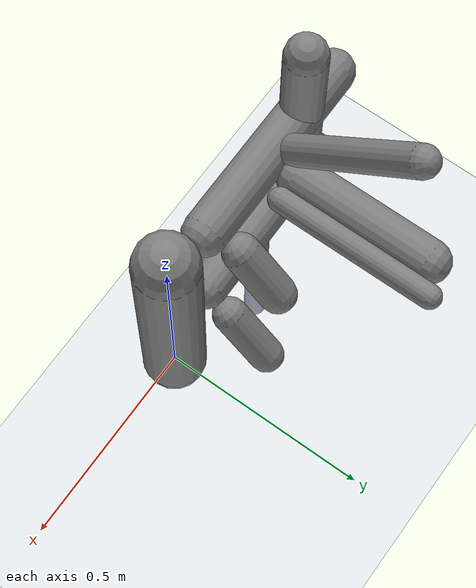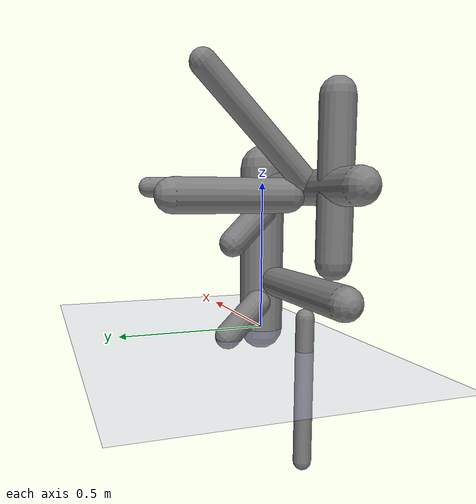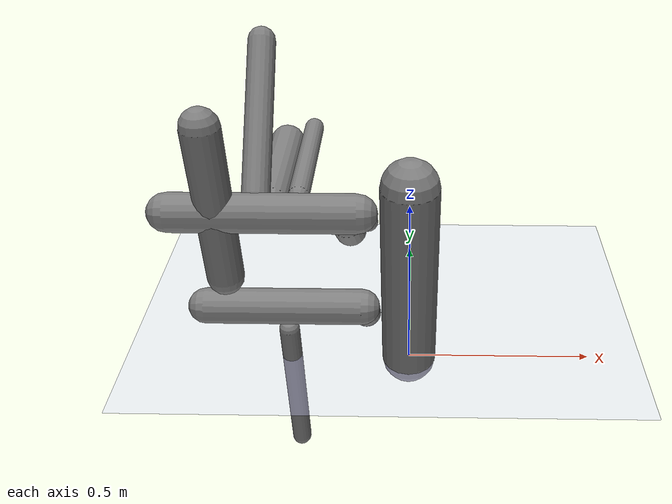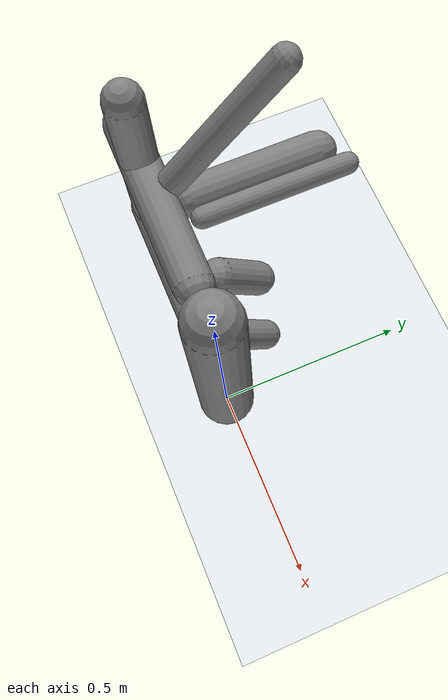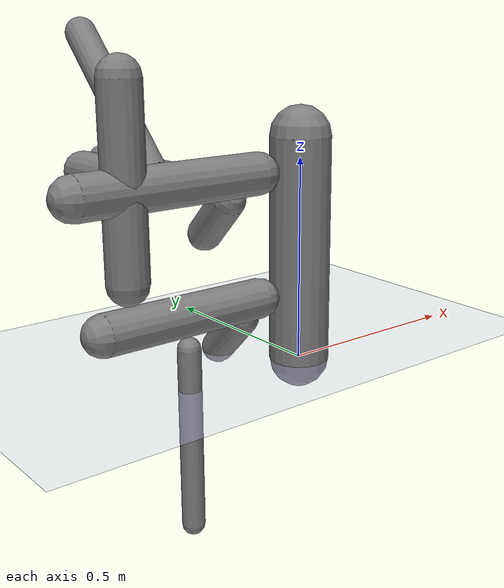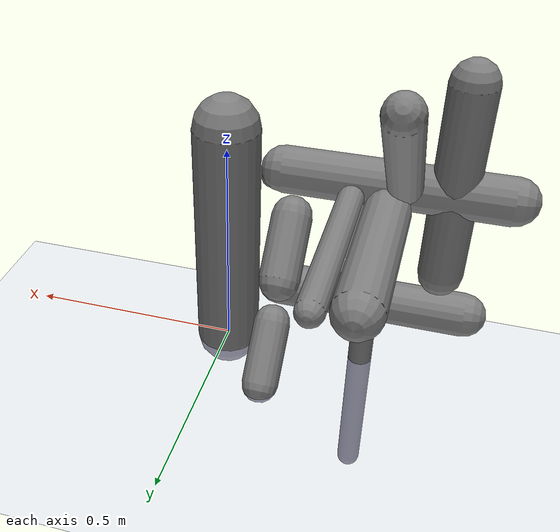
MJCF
<?xml version='1.0' encoding='UTF-8'?>
<mujoco model="robot_model">
  <worldbody>
    <light name="light" pos="0 -3 10" dir="0 0.5 -1" diffuse=".8 .8 .8" specular="0.1 0.1 0.1"/>
    <geom name="floor" type="plane" size="10.0 10.0 0.1" pos="0 0 0" rgba="0.8 0.8 1 1" contype="2" conaffinity="1"/>
    <body name="limb0" pos="0 0 0">
      <geom name="limb0_geom" type="capsule" fromto="0 0 0 0 0 0.5510115623487184" size="0.0738102717139825" density="469.4518977719153" contype="1" conaffinity="2"/>
      <site type="sphere" size="0.01" name="limb0_site0" pos="-0.12614702199053712 1.5448554670268207e-17 0.17758371172314605" quat="0.7071067811865476 -8.659560562354932e-17 -0.7071067811865475 0.0"/>
      <site type="sphere" size="0.01" name="limb0_site1" pos="-0.1279481332573387 1.5669127185047885e-17 0.4759562062422315" quat="0.7071067811865476 -8.659560562354932e-17 -0.7071067811865475 0.0"/>
      <site type="sphere" size="0.01" name="limb0_site2" pos="-0.10271789812102544 1.2579314514905774e-17 0.45391305332175064" quat="0.7071067811865476 -8.659560562354932e-17 -0.7071067811865475 0.0"/>
      <freejoint name="limb0_root"/>
      <body name="limb1" pos="-0.12614702199053712 1.5448554670268207e-17 0.17758371172314605" quat="0.7071067811865476 -8.659560562354932e-17 -0.7071067811865475 0.0">
        <geom name="limb1_geom" type="capsule" fromto="0 0 0 0 0 0.4156618494820584" size="0.04833675027655464" density="1039.3571037728918" contype="1" conaffinity="2"/>
        <site type="sphere" size="0.01" name="limb1_site0" pos="-0.06646319348262913 0.06646319348262913 0.00012498540596453357" quat="0.7071067811865476 -0.5 -0.4999999999999999 0.0"/>
        <site type="sphere" size="0.01" name="limb1_site1" pos="0.10048818104722655 0.0 0.3507315457296911" quat="0.7071067811865476 -0.0 0.7071067811865475 0.0"/>
        <site type="sphere" size="0.01" name="limb1_site2" pos="-0.07996145269271537 9.792453709530639e-18 0.2013877264477436" quat="0.7071067811865476 -8.659560562354932e-17 -0.7071067811865475 0.0"/>
        <body name="limb2" pos="-0.06646319348262913 0.06646319348262913 0.00012498540596453357" quat="0.7071067811865476 -0.5 -0.4999999999999999 0.0">
          <geom name="limb2_geom" type="capsule" fromto="0 0 0 0 0 0.14504546621622288" size="0.04165639934520658" density="725.5582405114449" contype="1" conaffinity="2"/>
          <joint name="joint_limb1_limb2_0" type="hinge" axis="0 1 0" range="-105.1875912234257 105.1875912234257" damping="5.0"/>
        </body>
        <body name="limb3" pos="0.10048818104722655 0.0 0.3507315457296911" quat="0.7071067811865476 -0.0 0.7071067811865475 0.0">
          <geom name="limb3_geom" type="capsule" fromto="0 0 0 0 0 0.4284412353578555" size="0.04815143077067191" density="1185.462658297435" contype="1" conaffinity="2"/>
          <joint name="joint_limb1_limb3_0" type="hinge" axis="0 1 0" range="-117.96887085096564 117.96887085096564" damping="5.0"/>
        </body>
        <body name="limb4" pos="-0.07996145269271537 9.792453709530639e-18 0.2013877264477436" quat="0.7071067811865476 -8.659560562354932e-17 -0.7071067811865475 0.0">
          <geom name="limb4_geom" type="capsule" fromto="0 0 0 0 0 0.44517999943327785" size="0.02762470241616073" density="851.5302568964753" contype="1" conaffinity="2"/>
          <joint name="joint_limb1_limb4_0" type="hinge" axis="0 0 1" range="-28.60124360610026 28.60124360610026" damping="5.0"/>
        </body>
        <joint name="joint_limb0_limb1_0" type="hinge" axis="0 0 1" range="-42.53284418756651 42.53284418756651" damping="5.0"/>
      </body>
      <body name="limb5" pos="-0.1279481332573387 1.5669127185047885e-17 0.4759562062422315" quat="0.7071067811865476 -8.659560562354932e-17 -0.7071067811865475 0.0">
        <geom name="limb5_geom" type="capsule" fromto="0 0 0 0 0 0.4655350670692652" size="0.050137861543356206" density="780.9176575750024" contype="1" conaffinity="2"/>
        <site type="sphere" size="0.01" name="limb5_site0" pos="-0.06856478792002631 0.06856478792002632 0.034329027617903164" quat="0.7071067811865476 -0.5 -0.4999999999999999 0.0"/>
        <site type="sphere" size="0.01" name="limb5_site1" pos="4.969264719451976e-18 0.08115425154275946 0.1535780785059355" quat="0.7071067811865476 -0.7071067811865475 4.329780281177466e-17 0.0"/>
        <body name="limb6" pos="-0.06856478792002631 0.06856478792002632 0.034329027617903164" quat="0.7071067811865476 -0.5 -0.4999999999999999 0.0">
          <geom name="limb6_geom" type="capsule" fromto="0 0 0 0 0 0.1375380613733225" size="0.04282739143437996" density="713.1043410437313" contype="1" conaffinity="2"/>
          <joint name="joint_limb5_limb6_0" type="hinge" axis="0 1 0" range="-62.85396081429238 62.85396081429238" damping="5.0"/>
        </body>
        <body name="limb7" pos="4.969264719451976e-18 0.08115425154275946 0.1535780785059355" quat="0.7071067811865476 -0.7071067811865475 4.329780281177466e-17 0.0">
          <geom name="limb7_geom" type="capsule" fromto="0 0 0 0 0 0.36991945998691156" size="0.027016389999403242" density="690.2575606903489" contype="1" conaffinity="2"/>
          <joint name="joint_limb5_limb7_0" type="hinge" axis="0 1 0" range="-39.92983406794862 39.92983406794862" damping="5.0"/>
        </body>
        <joint name="joint_limb0_limb5_0" type="hinge" axis="1 0 0" range="-49.39242559745576 49.39242559745576" damping="5.0"/>
      </body>
      <body name="limb8" pos="-0.10271789812102544 1.2579314514905774e-17 0.45391305332175064" quat="0.7071067811865476 -8.659560562354932e-17 -0.7071067811865475 0.0">
        <geom name="limb8_geom" type="capsule" fromto="0 0 0 0 0 0.4735075639827371" size="0.024907626407042936" density="947.2403584600264" contype="1" conaffinity="2"/>
        <site type="sphere" size="0.01" name="limb8_site0" pos="4.737368530246642e-18 0.07736709937175326 0.2519820094427367" quat="0.7071067811865476 -0.7071067811865475 4.329780281177466e-17 0.0"/>
        <site type="sphere" size="0.01" name="limb8_site1" pos="0.04566115055270776 0.04566115055270775 0.27860243231172377" quat="0.7071067811865476 -0.4999999999999999 0.5 0.0"/>
        <site type="sphere" size="0.01" name="limb8_site2" pos="0.0498681544338969 0.0 0.3737146839524725" quat="0.7071067811865476 -0.0 0.7071067811865475 0.0"/>
        <body name="limb9" pos="4.737368530246642e-18 0.07736709937175326 0.2519820094427367" quat="0.7071067811865476 -0.7071067811865475 4.329780281177466e-17 0.0">
          <geom name="limb9_geom" type="capsule" fromto="0 0 0 0 0 0.3276103417053433" size="0.048459472964710315" density="1060.7657777363195" contype="1" conaffinity="2"/>
          <joint name="joint_limb8_limb9_0" type="hinge" axis="0 0 1" range="-119.70102930724917 119.70102930724917" damping="5.0"/>
        </body>
        <body name="limb10" pos="0.04566115055270776 0.04566115055270775 0.27860243231172377" quat="0.7071067811865476 -0.4999999999999999 0.5 0.0">
          <geom name="limb10_geom" type="capsule" fromto="0 0 0 0 0 0.40121999594627056" size="0.035666991978156114" density="751.3831454866452" contype="1" conaffinity="2"/>
          <joint name="joint_limb8_limb10_0" type="hinge" axis="0 0 1" range="-92.61235109339803 92.61235109339803" damping="5.0"/>
        </body>
        <body name="limb11" pos="0.0498681544338969 0.0 0.3737146839524725" quat="0.7071067811865476 -0.0 0.7071067811865475 0.0">
          <geom name="limb11_geom" type="capsule" fromto="0 0 0 0 0 0.16534723645478247" size="0.02096052802685397" density="1106.7349869068496" contype="1" conaffinity="2"/>
          <joint name="joint_limb8_limb11_0" type="hinge" axis="0 1 0" range="-42.245339599136024 42.245339599136024" damping="5.0"/>
        </body>
        <joint name="joint_limb0_limb8_0" type="hinge" axis="0 1 0" range="-78.3320046923476 78.3320046923476" damping="5.0"/>
      </body>
    </body>
  </worldbody>
  <actuator>
    <position name="position_actuator_joint_limb0_limb1_0" joint="joint_limb0_limb1_0" gear="1.0434619257268536" inheritrange="1" forcerange="-48.47054565596125 48.47054565596125" forcelimited="true" kp="100.0"/>
    <position name="position_actuator_joint_limb1_limb2_0" joint="joint_limb1_limb2_0" gear="0.7083975186802963" inheritrange="1" forcerange="-3.966971808321513 3.966971808321513" forcelimited="true" kp="100.0"/>
    <position name="position_actuator_joint_limb1_limb3_0" joint="joint_limb1_limb3_0" gear="1.9609766072785328" inheritrange="1" forcerange="-21.269564138468017 21.269564138468017" forcelimited="true" kp="100.0"/>
    <position name="position_actuator_joint_limb1_limb4_0" joint="joint_limb1_limb4_0" gear="1.5442316755113392" inheritrange="1" forcerange="-4.920099339814097 4.920099339814097" forcelimited="true" kp="100.0"/>
    <position name="position_actuator_joint_limb0_limb5_0" joint="joint_limb0_limb5_0" gear="1.6514784049752103" inheritrange="1" forcerange="-23.628131500007818 23.628131500007818" forcelimited="true" kp="100.0"/>
    <position name="position_actuator_joint_limb5_limb6_0" joint="joint_limb5_limb6_0" gear="1.135606164455671" inheritrange="1" forcerange="-3.9989970875860155 3.9989970875860155" forcelimited="true" kp="100.0"/>
    <position name="position_actuator_joint_limb5_limb7_0" joint="joint_limb5_limb7_0" gear="1.2682604867566025" inheritrange="1" forcerange="-3.212542899345072 3.212542899345072" forcelimited="true" kp="100.0"/>
    <position name="position_actuator_joint_limb0_limb8_0" joint="joint_limb0_limb8_0" gear="0.560327331356901" inheritrange="1" forcerange="-28.239234948941878 28.239234948941878" forcelimited="true" kp="100.0"/>
    <position name="position_actuator_joint_limb8_limb9_0" joint="joint_limb8_limb9_0" gear="1.0258322170518321" inheritrange="1" forcerange="-15.347222051002463 15.347222051002463" forcelimited="true" kp="100.0"/>
    <position name="position_actuator_joint_limb8_limb10_0" joint="joint_limb8_limb10_0" gear="0.9201236027997493" inheritrange="1" forcerange="-6.7382000924238605 6.7382000924238605" forcelimited="true" kp="100.0"/>
    <position name="position_actuator_joint_limb8_limb11_0" joint="joint_limb8_limb11_0" gear="1.3366213739319597" inheritrange="1" forcerange="-1.4763444369835312 1.4763444369835312" forcelimited="true" kp="100.0"/>
  </actuator>
  <contact>
    <pair geom1="limb0_geom" geom2="limb1_geom"/>
    <pair geom1="limb1_geom" geom2="limb2_geom"/>
    <pair geom1="limb1_geom" geom2="limb3_geom"/>
    <pair geom1="limb1_geom" geom2="limb4_geom"/>
    <pair geom1="limb0_geom" geom2="limb5_geom"/>
    <pair geom1="limb5_geom" geom2="limb6_geom"/>
    <pair geom1="limb5_geom" geom2="limb7_geom"/>
    <pair geom1="limb0_geom" geom2="limb8_geom"/>
    <pair geom1="limb8_geom" geom2="limb9_geom"/>
    <pair geom1="limb8_geom" geom2="limb10_geom"/>
    <pair geom1="limb8_geom" geom2="limb11_geom"/>
  </contact>
</mujoco>
